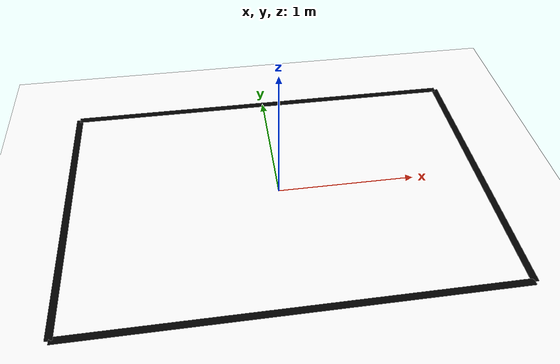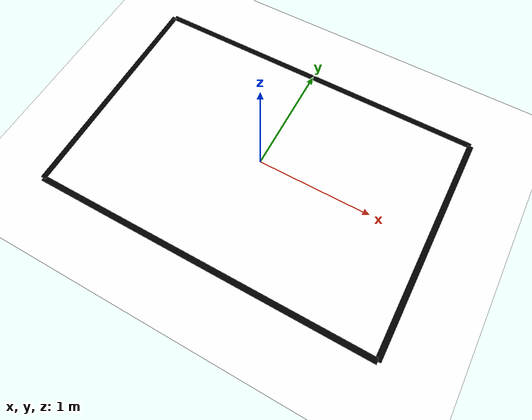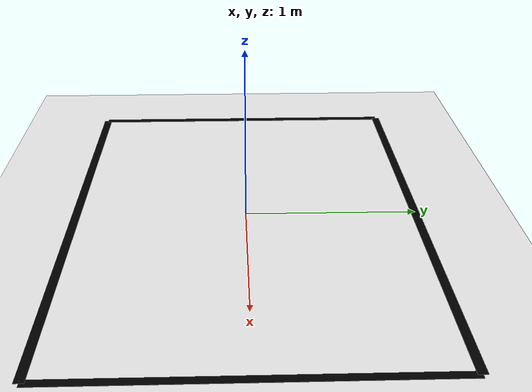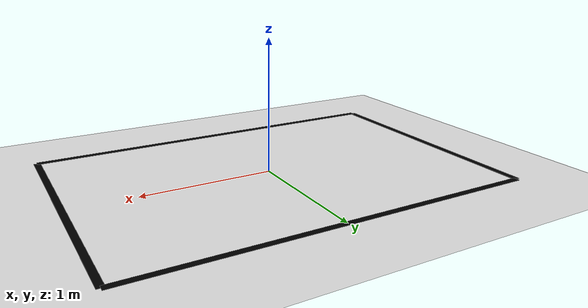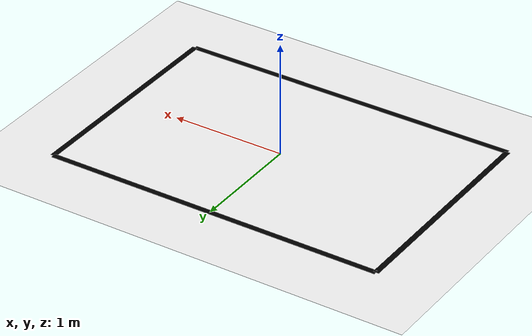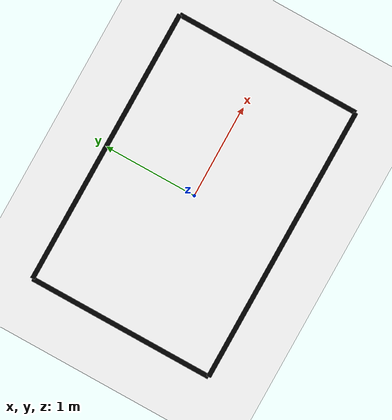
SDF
<?xml version="1.0" ?>
<sdf version="1.6">
  <world name="line_track">
    <include>
      <uri>model://sun</uri>
    </include>

    <!-- 흰색 바닥 -->
    <model name="ground_plane">
      <static>true</static>
      <link name="link">
        <collision name="collision">
          <geometry>
            <plane><normal>0 0 1</normal><size>10 8</size></plane>
          </geometry>
        </collision>
        <visual name="visual">
          <geometry>
            <plane><normal>0 0 1</normal><size>10 8</size></plane>
          </geometry>
          <material>
            <ambient>1 1 1 1</ambient>
            <diffuse>1 1 1 1</diffuse>
          </material>
        </visual>
      </link>
    </model>

    <!-- 검은 선: 3m x 2m 직사각형 트랙 (선 폭 0.05m) -->
    <model name="line_top">
      <static>true</static>
      <pose>0 1 0.001 0 0 0</pose>
      <link name="link">
        <visual name="visual">
          <geometry><box><size>3.0 0.05 0.001</size></box></geometry>
          <material><ambient>0 0 0 1</ambient><diffuse>0 0 0 1</diffuse></material>
        </visual>
      </link>
    </model>

    <model name="line_bottom">
      <static>true</static>
      <pose>0 -1 0.001 0 0 0</pose>
      <link name="link">
        <visual name="visual">
          <geometry><box><size>3.0 0.05 0.001</size></box></geometry>
          <material><ambient>0 0 0 1</ambient><diffuse>0 0 0 1</diffuse></material>
        </visual>
      </link>
    </model>

    <model name="line_left">
      <static>true</static>
      <pose>-1.5 0 0.001 0 0 1.5708</pose>
      <link name="link">
        <visual name="visual">
          <geometry><box><size>2.0 0.05 0.001</size></box></geometry>
          <material><ambient>0 0 0 1</ambient><diffuse>0 0 0 1</diffuse></material>
        </visual>
      </link>
    </model>

    <model name="line_right">
      <static>true</static>
      <pose>1.5 0 0.001 0 0 1.5708</pose>
      <link name="link">
        <visual name="visual">
          <geometry><box><size>2.0 0.05 0.001</size></box></geometry>
          <material><ambient>0 0 0 1</ambient><diffuse>0 0 0 1</diffuse></material>
        </visual>
      </link>
    </model>

    <physics type="ode">
      <max_step_size>0.001</max_step_size>
      <real_time_factor>1</real_time_factor>
    </physics>
  </world>
</sdf>
